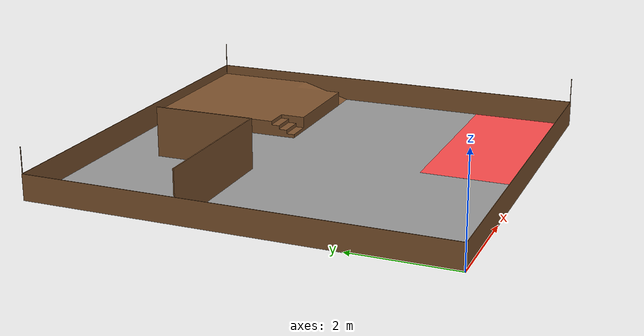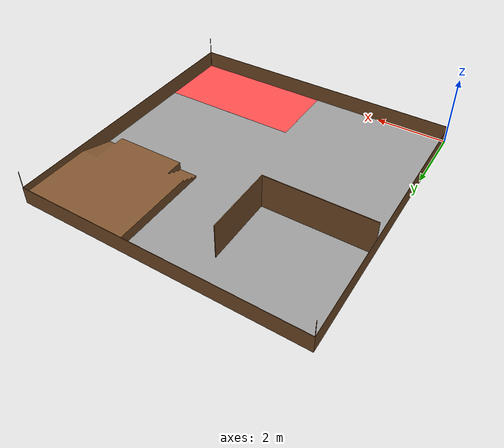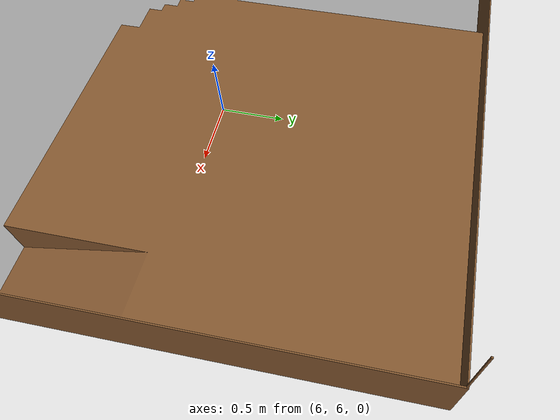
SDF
<sdf version="1.7">
 <world name="default">
  <light name="sun" type="directional">
   <pose>0 0 10 0 -0 0</pose>
   <diffuse>0.8 0.8 0.8 1</diffuse>
   <specular>0.2 0.2 0.2 1</specular>
   <attenuation>
    <range>1000</range>
    <constant>0.9</constant>
    <linear>0.01</linear>
    <quadratic>0.001</quadratic>
   </attenuation>
   <direction>-0.5 0.1 -0.9</direction>
   <spot><inner_angle>0</inner_angle><outer_angle>0</outer_angle><falloff>0</falloff></spot>
  </light>
  <gravity>0 0 -9.8</gravity>
  <magnetic_field>6e-06 2.3e-05 -4.2e-05</magnetic_field>
  <atmosphere type="adiabatic"/>
  <physics type="ode">
   <max_step_size>0.001</max_step_size>
   <real_time_factor>1</real_time_factor>
   <real_time_update_rate>1000</real_time_update_rate>
  </physics>
  <scene><ambient>0.4 0.4 0.4 1</ambient><background>0.7 0.7 0.7 1</background><shadows>1</shadows></scene>
  <audio><device>default</device></audio>
  <spherical_coordinates>
   <surface_model>EARTH_WGS84</surface_model>
   <latitude_deg>0</latitude_deg>
   <longitude_deg>0</longitude_deg>
   <elevation>0</elevation>
   <heading_deg>0</heading_deg>
  </spherical_coordinates>
  <model name="Arena">
   <link name="zone_1_and_3">
    <visual name="visual">
     <pose>4 4 0 0 -0 0</pose>
     <geometry><box><size>8 8 0.001</size></box></geometry>
     <material>
      <lighting>1</lighting>
      <script><uri>file://media/materials/scripts/gazebo.material</uri><name>Gazebo/Grey</name></script>
      <shader type="pixel"><normal_map>__default__</normal_map></shader>
      <ambient>0.3 0.3 0.3 1</ambient>
      <diffuse>0.7 0.7 0.7 1</diffuse>
      <specular>0.01 0.01 0.01 1</specular>
      <emissive>0 0 0 1</emissive>
     </material>
    </visual>
    <collision name="collision">
     <pose>4 4 0 0 -0 0</pose>
     <geometry><box><size>8 8 0.001</size></box></geometry>
     <surface>
      <friction>
       <ode><mu>1</mu><mu2>1</mu2><fdir1>0 0 0</fdir1><slip1>0</slip1><slip2>0</slip2></ode>
       <torsional>
        <coefficient>1</coefficient>
        <patch_radius>0</patch_radius>
        <surface_radius>0</surface_radius>
        <use_patch_radius>1</use_patch_radius>
        <ode><slip>0</slip></ode>
       </torsional>
      </friction>
      <bounce><restitution_coefficient>0</restitution_coefficient><threshold>1e+06</threshold></bounce>
      <contact>
       <collide_without_contact>0</collide_without_contact>
       <collide_without_contact_bitmask>1</collide_without_contact_bitmask>
       <collide_bitmask>1</collide_bitmask>
       <ode>
        <soft_cfm>0</soft_cfm>
        <soft_erp>0.2</soft_erp>
        <kp>1e+13</kp>
        <kd>1</kd>
        <max_vel>0.01</max_vel>
        <min_depth>0</min_depth>
       </ode>
       <bullet>
        <split_impulse>1</split_impulse>
        <split_impulse_penetration_threshold>-0.01</split_impulse_penetration_threshold>
        <soft_cfm>0</soft_cfm>
        <soft_erp>0.2</soft_erp>
        <kp>1e+13</kp>
        <kd>1</kd>
       </bullet>
      </contact>
     </surface>
    </collision>
   </link>
   <link name="zone_2">
    <visual name="visual">
     <pose>6 1 0.0001 0 -0 0</pose>
     <geometry><box><size>4 2 0.001</size></box></geometry>
     <material>
      <lighting>1</lighting>
      <script><uri>file://media/materials/scripts/gazebo.material</uri><name>Gazebo/Grey</name></script>
      <shader type="pixel"><normal_map>__default__</normal_map></shader>
      <ambient>1 0.3 0.3 1</ambient>
      <diffuse>0.7 0.7 0.7 1</diffuse>
      <specular>0.01 0.01 0.01 1</specular>
      <emissive>0 0 0 1</emissive>
     </material>
    </visual>
    <collision name="collision">
     <pose>6 1 0.0001 0 -0 0</pose>
     <geometry><box><size>4 2 0.001</size></box></geometry>
     <surface>
      <friction>
       <ode><mu>1</mu><mu2>1</mu2><fdir1>0 0 0</fdir1><slip1>0</slip1><slip2>0</slip2></ode>
       <torsional>
        <coefficient>1</coefficient>
        <patch_radius>0</patch_radius>
        <surface_radius>0</surface_radius>
        <use_patch_radius>1</use_patch_radius>
        <ode><slip>0</slip></ode>
       </torsional>
      </friction>
      <bounce><restitution_coefficient>0</restitution_coefficient><threshold>1e+06</threshold></bounce>
      <contact>
       <collide_without_contact>0</collide_without_contact>
       <collide_without_contact_bitmask>1</collide_without_contact_bitmask>
       <collide_bitmask>1</collide_bitmask>
       <ode>
        <soft_cfm>0</soft_cfm>
        <soft_erp>0.2</soft_erp>
        <kp>1e+13</kp>
        <kd>1</kd>
        <max_vel>0.01</max_vel>
        <min_depth>0</min_depth>
       </ode>
       <bullet>
        <split_impulse>1</split_impulse>
        <split_impulse_penetration_threshold>-0.01</split_impulse_penetration_threshold>
        <soft_cfm>0</soft_cfm>
        <soft_erp>0.2</soft_erp>
        <kp>1e+13</kp>
        <kd>1</kd>
       </bullet>
      </contact>
     </surface>
    </collision>
   </link>
   <link name="zone_4">
    <visual name="visual">
     <pose>6.5 6.5 0 0 -0 -1.5708</pose>
     <geometry><mesh><uri>src/arena_gazebo/meshes/zone_4.stl</uri><scale>0.01 0.01 0.01</scale></mesh></geometry>
     <material>
      <lighting>1</lighting>
      <script><uri>file://media/materials/scripts/gazebo.material</uri><name>Gazebo/Brown</name></script>
      <shader type="pixel"><normal_map>__default__</normal_map></shader>
      <ambient>0.3 0.3 0.3 1</ambient>
      <diffuse>0.7 0.7 0.7 1</diffuse>
      <specular>0.01 0.01 0.01 1</specular>
      <emissive>0 0 0 1</emissive>
     </material>
    </visual>
    <collision name="collision">
     <pose>6.5 6.5 0 0 -0 -1.5708</pose>
     <geometry><mesh><uri>src/arena_gazebo/meshes/zone_4.stl</uri><scale>0.01 0.01 0.01</scale></mesh></geometry>
     <surface>
      <friction>
       <ode><mu>1</mu><mu2>1</mu2><fdir1>0 0 0</fdir1><slip1>0</slip1><slip2>0</slip2></ode>
       <torsional>
        <coefficient>1</coefficient>
        <patch_radius>0</patch_radius>
        <surface_radius>0</surface_radius>
        <use_patch_radius>1</use_patch_radius>
        <ode><slip>0</slip></ode>
       </torsional>
      </friction>
      <bounce><restitution_coefficient>0</restitution_coefficient><threshold>1e+06</threshold></bounce>
      <contact>
       <collide_without_contact>0</collide_without_contact>
       <collide_without_contact_bitmask>1</collide_without_contact_bitmask>
       <collide_bitmask>1</collide_bitmask>
       <ode>
        <soft_cfm>0</soft_cfm>
        <soft_erp>0.2</soft_erp>
        <kp>1e+13</kp>
        <kd>1</kd>
        <max_vel>0.01</max_vel>
        <min_depth>0</min_depth>
       </ode>
       <bullet>
        <split_impulse>1</split_impulse>
        <split_impulse_penetration_threshold>-0.01</split_impulse_penetration_threshold>
        <soft_cfm>0</soft_cfm>
        <soft_erp>0.2</soft_erp>
        <kp>1e+13</kp>
        <kd>1</kd>
       </bullet>
      </contact>
     </surface>
    </collision>
   </link>
   <link name="arena_frame">
    <visual name="visual">
     <pose>4 4 0 0 -0 0</pose>
     <geometry>
      <mesh><uri>src/arena_gazebo/meshes/arena_frame.stl</uri><scale>0.01 0.01 0.01</scale></mesh>
     </geometry>
     <material>
      <lighting>1</lighting>
      <script><uri>file://media/materials/scripts/gazebo.material</uri><name>Gazebo/Brown</name></script>
      <shader type="pixel"><normal_map>__default__</normal_map></shader>
      <ambient>0.3 0.3 0.3 1</ambient>
      <diffuse>0.7 0.7 0.7 1</diffuse>
      <specular>0.01 0.01 0.01 1</specular>
      <emissive>0 0 0 1</emissive>
     </material>
    </visual>
    <collision name="collision">
     <pose>4 4 0 0 -0 0</pose>
     <geometry>
      <mesh><uri>src/arena_gazebo/meshes/arena_frame.stl</uri><scale>0.01 0.01 0.01</scale></mesh>
     </geometry>
     <surface>
      <friction>
       <ode><mu>1</mu><mu2>1</mu2><fdir1>0 0 0</fdir1><slip1>0</slip1><slip2>0</slip2></ode>
       <torsional>
        <coefficient>1</coefficient>
        <patch_radius>0</patch_radius>
        <surface_radius>0</surface_radius>
        <use_patch_radius>1</use_patch_radius>
        <ode><slip>0</slip></ode>
       </torsional>
      </friction>
      <bounce><restitution_coefficient>0</restitution_coefficient><threshold>1e+06</threshold></bounce>
      <contact>
       <collide_without_contact>0</collide_without_contact>
       <collide_without_contact_bitmask>1</collide_without_contact_bitmask>
       <collide_bitmask>1</collide_bitmask>
       <ode>
        <soft_cfm>0</soft_cfm>
        <soft_erp>0.2</soft_erp>
        <kp>1e+13</kp>
        <kd>1</kd>
        <max_vel>0.01</max_vel>
        <min_depth>0</min_depth>
       </ode>
       <bullet>
        <split_impulse>1</split_impulse>
        <split_impulse_penetration_threshold>-0.01</split_impulse_penetration_threshold>
        <soft_cfm>0</soft_cfm>
        <soft_erp>0.2</soft_erp>
        <kp>1e+13</kp>
        <kd>1</kd>
       </bullet>
      </contact>
     </surface>
    </collision>
   </link>
   <link name="zone_3">
    <visual name="visual">
     <pose>1.5 6.5 0 0 -0 0</pose>
     <geometry><mesh><uri>src/arena_gazebo/meshes/zone_3.stl</uri><scale>0.01 0.01 0.01</scale></mesh></geometry>
     <material>
      <lighting>1</lighting>
      <script><uri>file://media/materials/scripts/gazebo.material</uri><name>Gazebo/Brown</name></script>
      <shader type="pixel"><normal_map>__default__</normal_map></shader>
      <ambient>0.3 0.3 0.3 1</ambient>
      <diffuse>0.7 0.7 0.7 1</diffuse>
      <specular>0.01 0.01 0.01 1</specular>
      <emissive>0 0 0 1</emissive>
     </material>
    </visual>
    <collision name="collision">
     <pose>1.5 6.5 0 0 -0 0</pose>
     <geometry><mesh><uri>src/arena_gazebo/meshes/zone_3.stl</uri><scale>0.01 0.01 0.01</scale></mesh></geometry>
     <surface>
      <friction>
       <ode><mu>1</mu><mu2>1</mu2><fdir1>0 0 0</fdir1><slip1>0</slip1><slip2>0</slip2></ode>
       <torsional>
        <coefficient>1</coefficient>
        <patch_radius>0</patch_radius>
        <surface_radius>0</surface_radius>
        <use_patch_radius>1</use_patch_radius>
        <ode><slip>0</slip></ode>
       </torsional>
      </friction>
      <bounce><restitution_coefficient>0</restitution_coefficient><threshold>1e+06</threshold></bounce>
      <contact>
       <collide_without_contact>0</collide_without_contact>
       <collide_without_contact_bitmask>1</collide_without_contact_bitmask>
       <collide_bitmask>1</collide_bitmask>
       <ode>
        <soft_cfm>0</soft_cfm>
        <soft_erp>0.2</soft_erp>
        <kp>1e+13</kp>
        <kd>1</kd>
        <max_vel>0.01</max_vel>
        <min_depth>0</min_depth>
       </ode>
       <bullet>
        <split_impulse>1</split_impulse>
        <split_impulse_penetration_threshold>-0.01</split_impulse_penetration_threshold>
        <soft_cfm>0</soft_cfm>
        <soft_erp>0.2</soft_erp>
        <kp>1e+13</kp>
        <kd>1</kd>
       </bullet>
      </contact>
     </surface>
    </collision>
   </link>
   <link name="pink_beacon">
    <visual name="visual">
     <pose>0 0 0.5 0 -0 0</pose>
     <geometry><box><size>0.01 0.01 1</size></box></geometry>
     <material>
      <lighting>1</lighting>
      <script><uri>file://media/materials/scripts/gazebo.material</uri><name>Gazebo/Brown</name></script>
      <shader type="pixel"><normal_map>__default__</normal_map></shader>
      <ambient>1 0 1 1</ambient>
      <diffuse>1 0 1 1</diffuse>
      <specular>1 0 1 1</specular>
      <emissive>1 0 1 1</emissive>
     </material>
    </visual>
   </link>
   <link name="red_beacon">
    <visual name="visual">
     <pose>0 8 0.5 0 -0 0</pose>
     <geometry><box><size>0.01 0.01 1</size></box></geometry>
     <material>
      <lighting>1</lighting>
      <script><uri>file://media/materials/scripts/gazebo.material</uri><name>Gazebo/Brown</name></script>
      <shader type="pixel"><normal_map>__default__</normal_map></shader>
      <ambient>1 0 0 1</ambient>
      <diffuse>1 0 0 1</diffuse>
      <specular>1 0 0 1</specular>
      <emissive>1 0 0 1</emissive>
     </material>
    </visual>
   </link>
   <link name="green_beacon">
    <visual name="visual">
     <pose>8 8 0.5 0 -0 0</pose>
     <geometry><box><size>0.01 0.01 1</size></box></geometry>
     <material>
      <lighting>1</lighting>
      <script><uri>file://media/materials/scripts/gazebo.material</uri><name>Gazebo/Brown</name></script>
      <shader type="pixel"><normal_map>__default__</normal_map></shader>
      <ambient>0 1 0 1</ambient>
      <diffuse>0 1 0 1</diffuse>
      <specular>0 1 0 1</specular>
      <emissive>0 1 0 1</emissive>
     </material>
    </visual>
   </link>
   <link name="blue_beacon">
    <visual name="visual">
     <pose>8 0 0.5 0 -0 0</pose>
     <geometry><box><size>0.01 0.01 1</size></box></geometry>
     <material>
      <lighting>1</lighting>
      <script><uri>file://media/materials/scripts/gazebo.material</uri><name>Gazebo/Brown</name></script>
      <shader type="pixel"><normal_map>__default__</normal_map></shader>
      <ambient>0 0 1 1</ambient>
      <diffuse>0 0 1 1</diffuse>
      <specular>0 0 1 1</specular>
      <emissive>0 0 1 1</emissive>
     </material>
    </visual>
   </link>
   <static>1</static>
  </model>
  <light name="pink_beacon_light" type="point">
   <pose>-0.868508 -0.874592 1 0 -0 0</pose>
   <diffuse>0.2 0.0 0.2 1</diffuse>
   <specular>0.1 0.1 0.1 1</specular>
   <attenuation>
    <range>20</range>
    <constant>0.5</constant>
    <linear>0.01</linear>
    <quadratic>0.001</quadratic>
   </attenuation>
   <cast_shadows>0</cast_shadows>
   <direction>0 0 -1</direction>
   <spot><inner_angle>0</inner_angle><outer_angle>0</outer_angle><falloff>0</falloff></spot>
  </light>
  <light name="blue_beacon_light" type="point">
   <pose>-0.941262 2.27416 1 0 -0 0</pose>
   <diffuse>0.0 0.0 0.4 1</diffuse>
   <specular>0.1 0.1 0.1 1</specular>
   <attenuation>
    <range>20</range>
    <constant>0.5</constant>
    <linear>0.01</linear>
    <quadratic>0.001</quadratic>
   </attenuation>
   <cast_shadows>0</cast_shadows>
   <direction>0 0 -1</direction>
   <spot><inner_angle>0</inner_angle><outer_angle>0</outer_angle><falloff>0</falloff></spot>
  </light>
  <light name="green_beacon_light" type="point">
   <pose>7.02027 5.69683 1 0 -0 0</pose>
   <diffuse>0.0 0.4 0.0 1</diffuse>
   <specular>0.1 0.1 0.1 1</specular>
   <attenuation>
    <range>20</range>
    <constant>0.5</constant>
    <linear>0.01</linear>
    <quadratic>0.001</quadratic>
   </attenuation>
   <cast_shadows>0</cast_shadows>
   <direction>0 0 -1</direction>
   <spot><inner_angle>0</inner_angle><outer_angle>0</outer_angle><falloff>0</falloff></spot>
  </light>
  <light name="red_beacon_light" type="point">
   <pose>0.5371 9.14634 1 0 -0 0</pose>
   <diffuse>0.4 0.0 0.0 1</diffuse>
   <specular>0.1 0.1 0.1 1</specular>
   <attenuation>
    <range>20</range>
    <constant>0.5</constant>
    <linear>0.01</linear>
    <quadratic>0.001</quadratic>
   </attenuation>
   <cast_shadows>0</cast_shadows>
   <direction>0 0 -1</direction>
   <spot><inner_angle>0</inner_angle><outer_angle>0</outer_angle><falloff>0</falloff></spot>
  </light>
 </world>
</sdf>
